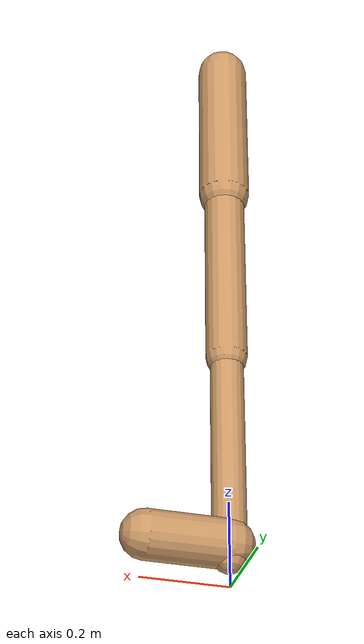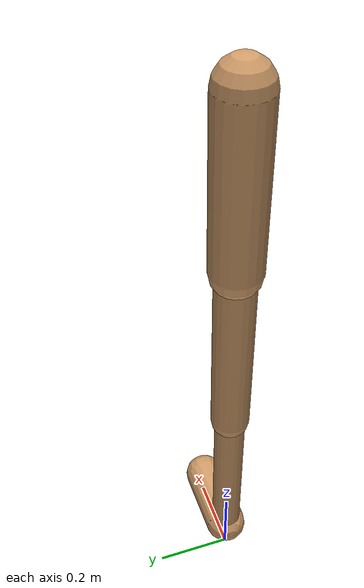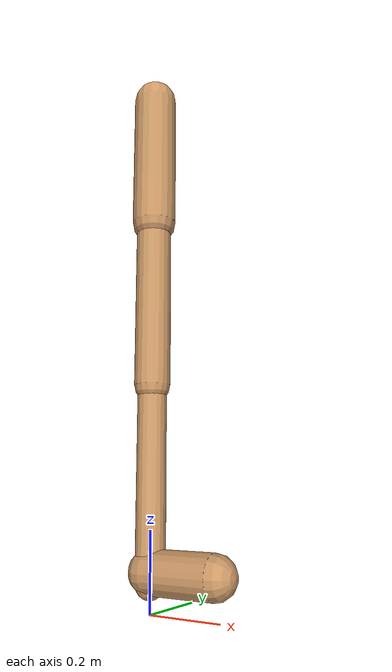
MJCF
<mujoco model="walker2d">
  <compiler angle="degree" coordinate="global" inertiafromgeom="true" />
  <default>
    <joint armature="0.01" damping=".1" limited="true" />
    <geom conaffinity="0" condim="3" contype="1" density="1000" friction="0.8 .1 .1" rgba="0.8 0.6 .4 1" />
  </default>
  <option integrator="RK4" timestep="0.002" />
  <worldbody>

    <body name="torso" pos="0 0 0.05331323343865515">
      <joint armature="0" axis="1 0 0" damping="0" limited="false" name="ignorex" pos="0 0 0" stiffness="0" type="slide" />
      <joint armature="0" axis="0 0 1" damping="0" limited="false" name="ignorez" pos="0 0 0" ref="1.25" stiffness="0" type="slide" />
      <joint armature="0" axis="0 1 0" damping="0" limited="false" name="ignorey" pos="0 0 0" stiffness="0" type="hinge" />
      <geom fromto="0 0 1.45 0 0 1.05" name="torso_geom" size="0.06162294278503894" type="capsule" />
      <body name="thigh">
        <joint axis="0 -1 0" name="thigh_joint" pos="0 0 1.05" range="-150 0" type="hinge" />
        <geom fromto="0.0 0.0 1.05 0.0 0.0 0.5747463631080054" name="thigh_geom" size="0.04871178550898763" type="capsule" />
        <body name="leg" pos="0.0 0.0 -0.025253636891994558">
          <joint axis="0 -1 0" name="leg_joint" pos="0 0 0.6" range="-150 0" type="hinge" />
          <geom fromto="0.0 0.0 0.6 0.0 0.0 0.07194040345333941" name="leg_geom" size="0.0389694284071901" type="capsule" />
          <body name="foot" pos="0.0 0.0 -0.028059596546660598">
            <joint axis="0 -1 0" name="foot_joint" pos="0 0 0.1" range="-45 45" type="hinge" />
            <geom fromto="0.0 0.0 0.09999999999999999 0.18712195314672753 0.0 0.09999999999999999" name="foot_geom" size="0.056119017318178185" type="capsule" />
          </body>
        </body>
      </body>

      <body name="thigh_left">
        <joint axis="0 -1 0" name="thigh_left_joint" pos="0 0 1.05" range="-150 0" type="hinge" />
        <geom fromto="0.0 0.0 1.05 0.0 0.0 0.5747463631080054" name="thigh_left_geom" rgba=".7 .3 .6 1" size="0.04871178550898763" type="capsule" />
        <body name="leg_left" pos="0.0 0.0 -0.025253636891994558">
          <joint axis="0 -1 0" name="leg_left_joint" pos="0 0 0.6" range="-150 0" type="hinge" />
          <geom fromto="0.0 0.0 0.6 0.0 0.0 0.07194040345333941" name="leg_left_geom" rgba=".7 .3 .6 1" size="0.0389694284071901" type="capsule" />
          <body name="foot_left" pos="0.0 0.0 -0.028059596546660598">
            <joint axis="0 -1 0" name="foot_left_joint" pos="0 0 0.1" range="-45 45" type="hinge" />
            <geom fromto="0.0 0.0 0.09999999999999999 0.18712195314672753 0.0 0.09999999999999999" name="foot_left_geom" rgba=".7 .3 .6 1" size="0.056119017318178185" type="capsule" />
          </body>
        </body>
      </body>
    </body>
  </worldbody>
  <actuator>

    <motor ctrllimited="true" ctrlrange="-1.0 1.0" gear="100" joint="thigh_joint" />
    <motor ctrllimited="true" ctrlrange="-1.0 1.0" gear="100" joint="leg_joint" />
    <motor ctrllimited="true" ctrlrange="-1.0 1.0" gear="100" joint="foot_joint" />
    <motor ctrllimited="true" ctrlrange="-1.0 1.0" gear="100" joint="thigh_left_joint" />
    <motor ctrllimited="true" ctrlrange="-1.0 1.0" gear="100" joint="leg_left_joint" />
    <motor ctrllimited="true" ctrlrange="-1.0 1.0" gear="100" joint="foot_left_joint" />

  </actuator>
</mujoco>
